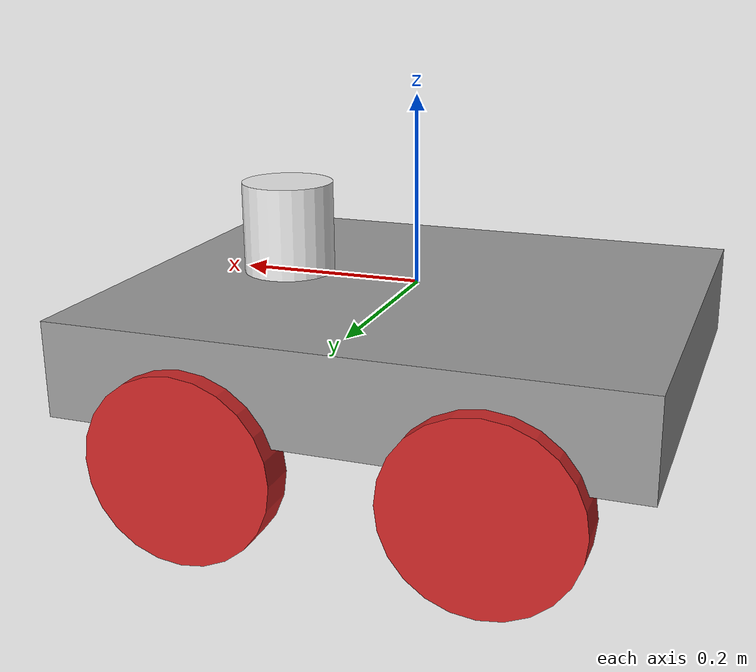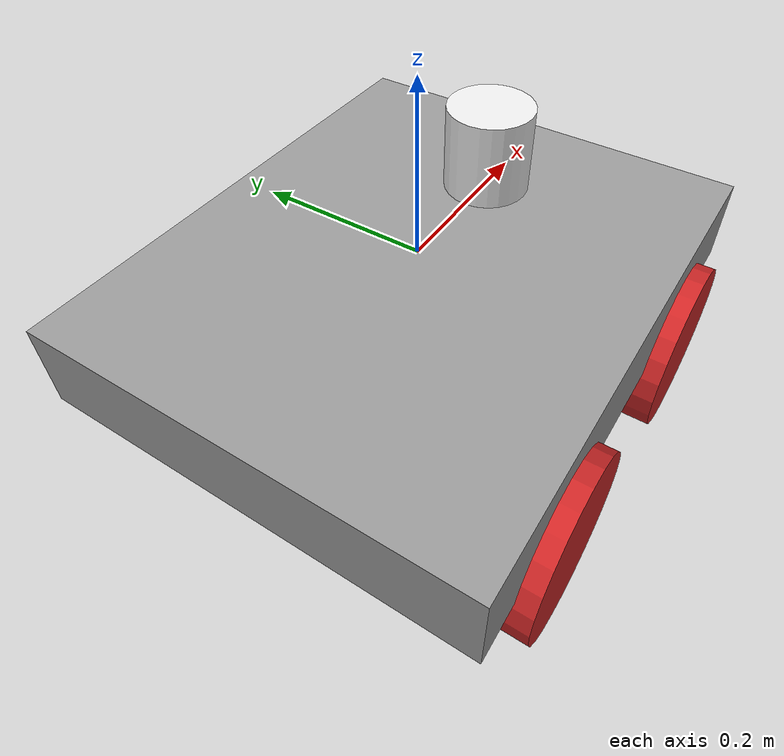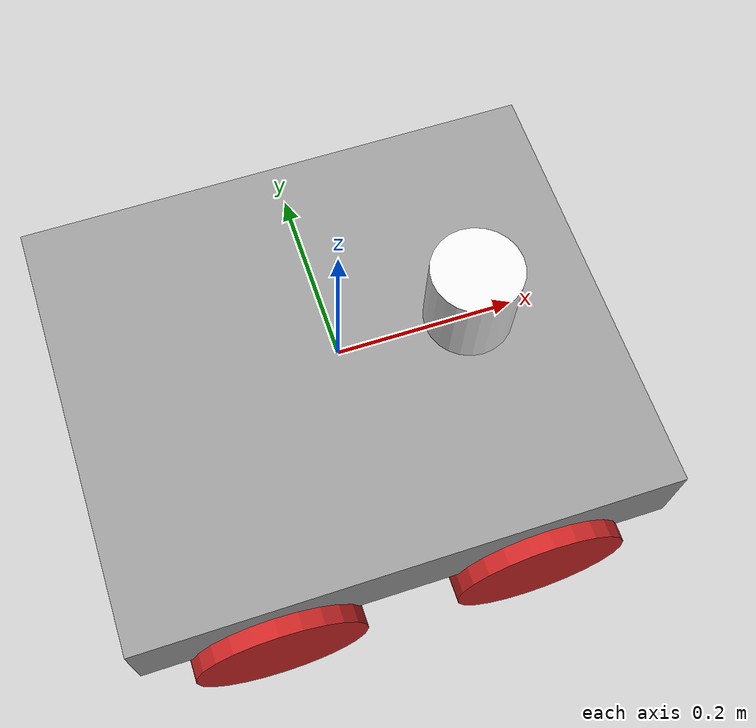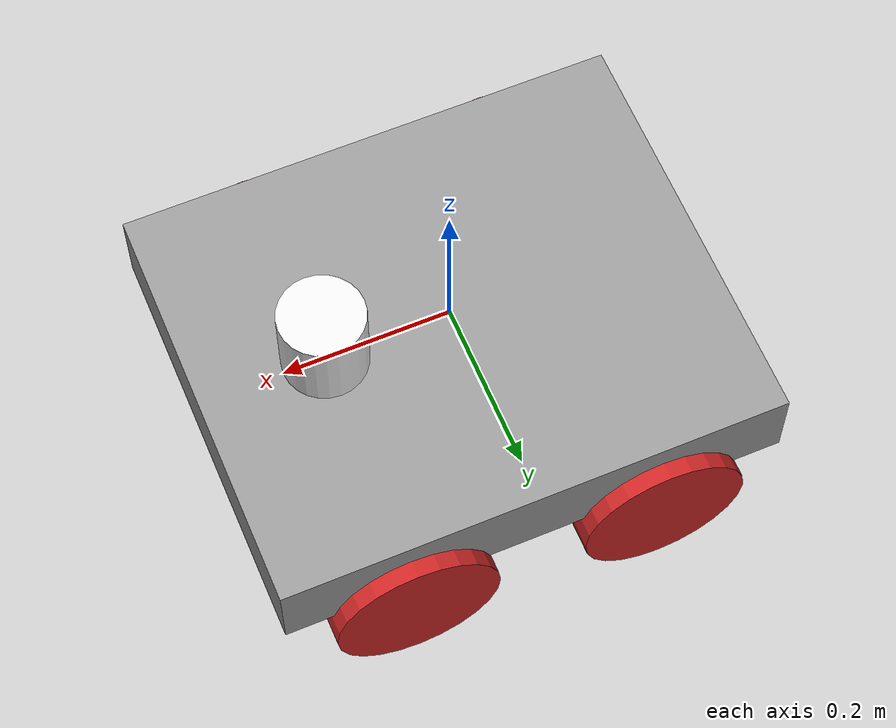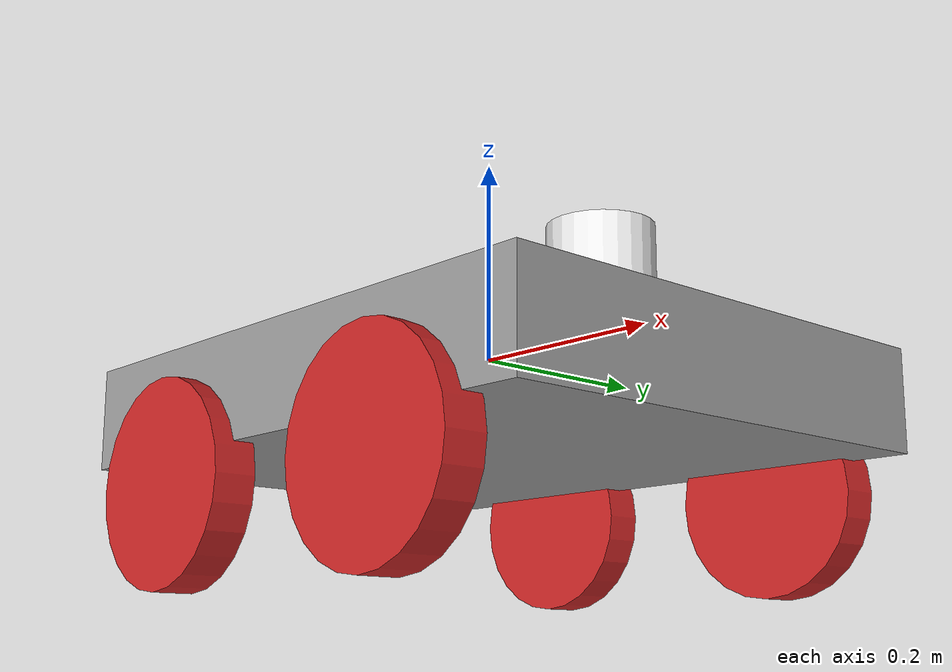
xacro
<?xml version="1.0"?>

<robot name="iris_model" xmlns:xacro="http://www.ros.org/wiki/xacro">
  <xacro:include filename="$(find iris_model)/urdf/macros.xacro" />

  <!-- base_link is a fictitious link(frame) that is on the ground right below chassis_link origin -->
  <link name="base_link">
    <visual>
    <origin xyz="0 0 0" rpy="0 0 0" />
    <geometry>
      <box size="0.001 0.001 0.001" />
    </geometry>
    </visual>
  </link>

  <joint name="base_link_joint" type="fixed">
    <origin xyz="0 0 0" rpy="0 0 0" />
    <parent link="base_link"/>
    <child link="chassis_link" />
  </joint>

  <link name="chassis_link">
    <visual>
      <origin xyz="0 0 ${footprint_vertical_offset}" rpy="0 0 0"/>
      <geometry>
        <box size="${chassis_length} ${chassis_width} ${chassis_height}"/>
      </geometry>
      <material name="Grey" />
    </visual>
    <collision>
      <origin xyz="0 0 ${footprint_vertical_offset}"/>
      <geometry>
        <box size="${chassis_length} ${chassis_width} ${chassis_height}"/>
      </geometry>
    </collision>
    <inertial>
    <!-- Center of mass -->
    <origin xyz="0.012  0.002 0.067" rpy="0 0 0"/>
    <mass value="16.523"/>
    <!-- Moments of inertia: ( chassis without wheels ) -->
    <inertia
      ixx="0.3136" ixy="-0.0008" ixz="0.0164"
      iyy="0.3922" iyz="-0.0009"
      izz="0.4485"/>
    </inertial>
  </link>

  <joint name="joint_sensor_laser" type="fixed">
    <origin xyz="0.15 0 0.05" rpy="0 0 0"/>
    <parent link="chassis_link"/>
    <child link="sensor_laser"/>
  </joint>

  <link name="sensor_laser">
    <inertial>
      <origin xyz="0 0 0" rpy="0 0 0" />
      <mass value="1" />
      <xacro:cylinder_inertia mass="1" r="0.05" l="0.1" />
    </inertial>

    <visual>
      <origin xyz="0 0 0" rpy="0 0 0" />
      <geometry>
        <cylinder radius="0.05" length="0.1"/>
      </geometry>
      <material name="white" />
    </visual>

    <collision>
      <origin xyz="0 0 0" rpy="0 0 0"/>
      <geometry>
        <cylinder radius="0.05" length="0.1"/>
      </geometry>
    </collision>
  </link>

  <xacro:wheel prefix="front_left" trans_x="${wheel_horizontal_separation}" trans_y="${wheel_vertical_separation+wheel_width/2}" trans_z="${wheel_vertical_offset}"/>
  <xacro:wheel prefix="front_right" trans_x="${wheel_horizontal_separation}" trans_y="${-wheel_vertical_separation-wheel_width/2}" trans_z="${wheel_vertical_offset}"/>
  <xacro:wheel prefix="rear_left" trans_x="${-wheel_horizontal_separation}" trans_y="${wheel_vertical_separation+wheel_width/2}" trans_z="${wheel_vertical_offset}"/>
  <xacro:wheel prefix="rear_right" trans_x="${-wheel_horizontal_separation}" trans_y="${-wheel_vertical_separation-wheel_width/2}" trans_z="${wheel_vertical_offset}"/>

  <xacro:include filename="$(find iris_model)/urdf/robot.gazebo" />

</robot>

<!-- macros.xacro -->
<robot name="macros" xmlns:xacro="http://www.ros.org/wiki/xacro">

  <!--All units in m-kg-s-radians unit system -->
  <xacro:property name="M_PI" value="3.1415926535897931" />
  <xacro:property name="footprint_vertical_offset" value="-0.05" />

  <!-- Chassis -->
  <xacro:property name="chassis_height" value="0.1" />
  <xacro:property name="chassis_width" value="0.5" />
  <xacro:property name="chassis_length" value="0.6" />
  <xacro:property name="chassis_mass" value="5" /> <!-- in kg-->

  <!-- Wheels -->
  <xacro:property name="wheel_horizontal_separation" value="0.15" />
  <xacro:property name="wheel_vertical_separation" value="0.23" />
  <xacro:property name="wheel_vertical_offset" value="-0.13" />
  <xacro:property name="wheel_radius" value="0.098" />
  <xacro:property name="wheel_width" value="0.040" />

  <xacro:macro name="wheel" params="prefix trans_x trans_y trans_z">
    <link name="${prefix}_wheel">
      <visual>
        <origin xyz="0 0 0" rpy="${M_PI/2} 0 0"/>
        <geometry>
          <cylinder radius="${wheel_radius}" length="${wheel_width}"/>
        </geometry>
        <material name="Red" />
      </visual>
      <collision>
        <origin xyz="0 0 0" rpy="${M_PI/2} 0 0"/>
        <geometry>
          <cylinder radius="${wheel_radius}" length="${wheel_width}"/>
        </geometry>
      </collision>
      <inertial>
        <origin xyz="0 0 0" rpy="0 0 0"/>
        <mass value="0.477"/>
        <inertia
          ixx="0.0013" ixy="0" ixz="0"
          iyy="0.0024" iyz="0"
          izz="0.0013"/>
        </inertial>
    </link>

    <gazebo reference="${prefix}_wheel">
      <material>Gazebo/DarkGrey</material>
    </gazebo>

    <joint name="${prefix}_joint" type="continuous">
      <parent link="chassis_link"/>
      <child link="${prefix}_wheel" />
      <origin xyz="${trans_x} ${trans_y} ${trans_z}" rpy="0 0 0" />
      <axis xyz="0 1 0" />
    </joint>
  </xacro:macro>

  <xacro:macro name="cylinder_inertia" params="mass r l">
    <inertia  ixx="${mass*(3*r*r+l*l)/12}" ixy = "0" ixz = "0"
              iyy="${mass*(3*r*r+l*l)/12}" iyz = "0"
              izz="${mass*(r*r)/2}" />
  </xacro:macro>

</robot>
